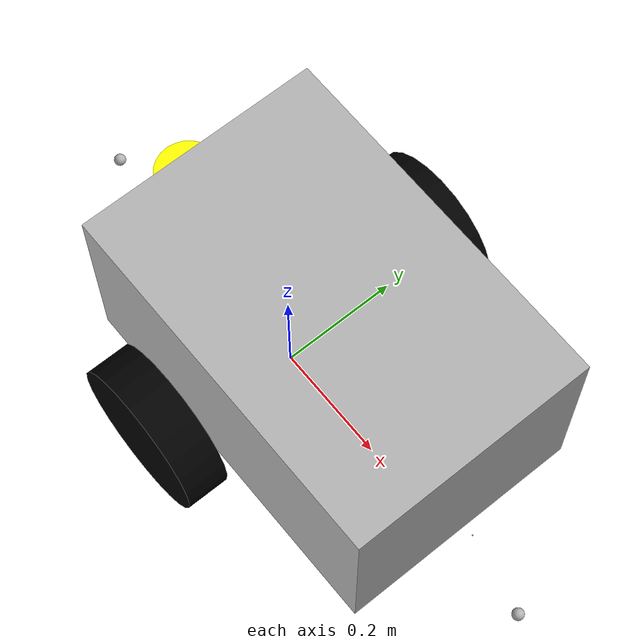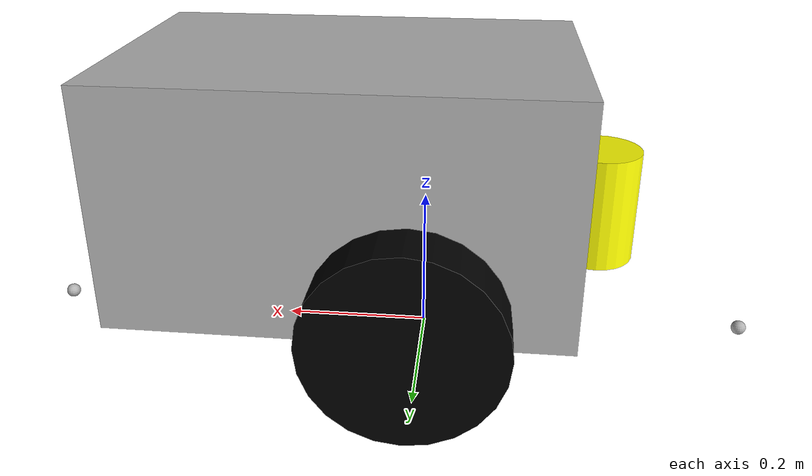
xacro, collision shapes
<?xml version="1.0"?>
<!-- Materials -->
<robot xmlns:xacro="http://www.ros.org/wiki/xacro" name="mp_500">

    <material name="Neobotix/Black">
        <color rgba="0.0 0.0 0.0 1.0"/>
    </material>

    <material name="Neobotix/Blue">
        <color rgba="0.0 0.0 0.8 1.0"/>
    </material>

    <material name="Neobotix/Green">
        <color rgba="0.0 0.8 0.0 1.0"/>
    </material>

    <material name="Neobotix/Grey">
        <color rgba="0.7 0.7 0.7 1.0"/>
    </material>

    <material name="Neobotix/Grey2">
        <color rgba="0.9 0.9 0.9 1.0"/>
    </material>

    <material name="Neobotix/Red">
        <color rgba="0.8 0.0 0.0 1.0"/>
    </material>

    <material name="Neobotix/White">
        <color rgba="1.0 1.0 1.0 1.0"/>
    </material>

    <material name="Neobotix/Yellow">
        <color rgba="1.0 1.0 0 10" />
    </material>

<!--++++++++++++++++++++++++++++++base_link++++++++++++++++++++++++++++++++++++++++++++++++++++-->
<!--++++++++++++++++++++body++++++++++++++++++++++++++++-->
  <link name="base_link">
       <inertial>
		  <mass value="5.67" />
		    <origin xyz="0.10 0 0.244" rpy="0 0 0"/>
		    <inertia ixx="0.25" ixy="0.0" ixz="0.0"
		             iyy="0.25" iyz="0.0"
		             izz="0.25" />
	  </inertial>
      <visual name='body'>
        <!--origin xyz="0.0 0.0 0.234" rpy="0 0 1.57" /--><!-- for cylinder -->
	<origin xyz="0.0 0.0 0.09" rpy="0 0 -1.57" /><!-- for STL -->
              <geometry>
                 <mesh filename="package://neo_mp_500/robot_model/mp_500/meshes/MP500-BODY.STL" scale="0.01 0.01 0.01"/>
	    	<!--cylinder length="0.381" radius="0.2545"/-->
	    	<!--box size="0.445 0.277 0.17"/-->
              </geometry>
        <material name="Neobotix/Grey" />
       </visual>
      <collision name='body_collision'>
        <origin xyz="0.10 0 0.244" rpy="0 0 -1.57" />
        <geometry>
          <box size="0.400 0.600 0.320"/>
          <!--cylinder length="0.381" radius="0.2545"/-->
        </geometry>
      </collision>
</link>

<!--+++++++++++++++++++wheel_left_link++++++++++++++++++++++++-->
	<link name="wheel_left_link" type="wheel">
    	  <inertial>
      		<mass value="0.15" />
     		 <origin xyz="0 0 0" rpy="0 0 0" />
      		<inertia ixx="0.0007" ixy="0" ixz="0" iyy="0.0007" iyz="0" izz="0.0007" />
    	  </inertial>

    <visual>
     	<origin xyz="0 0 0" rpy="0 0 -1.57" />
     	<geometry>
		<mesh filename="package://neo_mp_500/robot_model/mp_500/meshes/MP500-WHEEL.STL" scale="0.01 0.01 0.01" />
     	</geometry>

     	<material name="Neobotix/Black" />
    </visual>
    <collision>
     	<origin xyz="0 0 0" rpy="0 1.57 -1.57" />
     	<geometry>
        	<cylinder radius="0.125" length="0.07"/>
     	</geometry>
    </collision>

</link>

<!--+++++++++++++++++++wheel_left_joint++++++++++++++++++++++++-->
	<joint name="wheel_left_joint" type="revolute">
		<origin xyz="0.005 0.255 0.13" rpy="0 0 0" />
    	<axis xyz="0 1 0"/>
    	<limit effort="1000.0" lower="-1e+16" upper="1e+16" velocity="3.5"/>
    	<joint_properties damping="0.0" friction="0.0" />
    	<parent link="base_link" />
    	<child link="wheel_left_link" />
    </joint>

<!--+++++++++++++++++++wheel_right_link++++++++++++++++++++++++-->
<link name="wheel_right_link" type="wheel">
	<inertial>
		  <mass value="0.15" />
		  <origin xyz="0 0 0" rpy="0 0 -1.57" />
		  <!--inertia ixx="0.0051" ixy="0" ixz="0" iyy="0.0051" iyz="0" izz="0.009" /-->
                  <inertia ixx="0.0007" ixy="0" ixz="0" iyy="0.0007" iyz="0" izz="0.0007" />
	</inertial>

		<visual>
		 	<origin xyz="0 0 0" rpy="0 0 -1.57" />
		 	<geometry>
				<mesh filename="package://neo_mp_500/robot_model/mp_500/meshes/MP500-WHEEL.STL" scale="0.01 0.01 0.01" />
		 	</geometry>
		 	<material name="Neobotix/Black" />
		</visual>

		<collision>
		 	<origin xyz="0 0 0" rpy="0 1.57 -1.57" />
		 	<geometry>
		    	<cylinder radius="0.125" length="0.07"/>
		 	</geometry>
		</collision>
	</link>

<!--+++++++++++++++++++wheel_right_joint++++++++++++++++++++++++-->
	<joint name="wheel_right_joint" type="revolute">
    	<origin xyz="0.005 -0.255 0.13" rpy="0 0 0" />
    	<axis xyz="0 1 0"/>
    	<limit effort="1000.0" lower="-1e+16" upper="1e+16" velocity="3.5"/>
    	<joint_properties damping="0.0" friction="0.0" />
    	<parent link="base_link" />
    	<child link="wheel_right_link" />
    </joint>

<!--+++++++++++++++++++laserscanner_front_joint++++++++++++++++++++++++-->
	<joint name="laserscanner_front_joint" type="fixed">
		  <axis xyz="0 0 1" />
		  <origin xyz="-0.234 0 0.241" rpy="0 0 0" />
		  <parent link="base_link"/>
		  <child link="laserscanner_front_link"/>
	</joint>

<!--+++++++++++++++++++laserscanner_front_link++++++++++++++++++++++++-->
	<link name="laserscanner_front_link" type="laser">
		<inertial>
			<mass value="0.01" />
			<origin xyz="0 0 -0.04" rpy="3.14 0 -1.57" />
			<inertia ixx="0.0001" ixy="0" ixz="0" iyy="0.000001" iyz="0" izz="0.0001" />
	  	</inertial>
	  	<visual>
			<origin xyz="0 0 -0.04" rpy="3.14 0 -1.57" />
			<geometry>
                             <!--cylinder length="0.154" radius="0.053" /-->
                             <mesh filename="package://neo_mp_500/robot_model/mp_500/meshes/SICK-S300.STL" />
			</geometry>
			<material name="Neobotix/Yellow" />
	  	</visual>
	  	<collision>
			<origin xyz="0 0 -0.04" rpy="3.14 0 -1.57" />
			<geometry>
		  	<cylinder length="0.154" radius="0.053" />
			</geometry>
	  	</collision>
	</link>
<!--+++++++++++++++ wheel_hanger+++++++++++++++++++++++++++-->
<link name="hanger">
	<inertial>
		  <mass value="0" />
		  <origin xyz="0 0 0" rpy="0 0 0" />
		  <inertia ixx="0.0013" ixy="0" ixz="0" iyy="0.0013" iyz="0" izz="0.0013" />
	</inertial>
	<visual>
	 	<origin xyz="0 0 0" rpy="0 0 -1.57" />
	 	<geometry>
		      <mesh filename="package://neo_mp_500/robot_model/mp_500/meshes/HANGER-WHEEL.STL" scale="0.01 0.01 0.01" />
		 </geometry>
		 <material name="Neobotix/Grey" />
	</visual>
        <collision>
		 <origin xyz="0 0 0" rpy="0 0 -1.57" />
		 <geometry>
          	 <sphere radius="0.00115"/>
		 </geometry>
	</collision>
</link>

<joint name="hanger_joint" type="fixed">
    	<origin xyz="0.425 0 0.12" rpy="0 0 0"/>
    	<axis xyz="0 0 1"/>
    	<limit effort="1000.0" lower="-1e+16" upper="1e+16" velocity="13.5"/>
    	<joint_properties damping="0.0" friction="0.0" />
    	<parent link="base_link" />
    	<child link="hanger" />
    </joint>

<!--+++++++++++++++ castor_front +++++++++++++++++++++++++++-->
<link name="castor_front">
	<inertial>
		  <mass value="0.05" />
		  <origin xyz="0 0 0" rpy="0 0 0" />
		  <inertia ixx="0.0013" ixy="0" ixz="0" iyy="0.0013" iyz="0" izz="0.0013" />
	</inertial>
	<visual>
	 	<origin xyz="0 0 0" rpy="0 0 0" />
	 	<geometry>
		   <sphere radius="0.0015"/>
		 </geometry>
		 <material name="Neobotix/Grey" />
	</visual>
        <collision>
		 <origin xyz="0 0 0" rpy="0 0 0" />
		 <geometry>
          	 <sphere radius="0.01"/>
		 </geometry>
	</collision>
</link>

<joint name="castor_front_joint" type="fixed">
    	<origin xyz="0.54 0 0.015" rpy="0 0 0"/>
    	<axis xyz="0 0 1"/>
    	<limit effort="1000.0" lower="-1e+16" upper="1e+16" velocity="13.5"/>
    	<joint_properties damping="0.0" friction="0.0" />
    	<parent link="base_link" />
    	<child link="castor_front" />
    </joint>

<!--+++++++++++++++ castor_back +++++++++++++++++++++++++++-->
<link name="castor_back">
	<inertial>
		  <mass value="0.05" />
		  <origin xyz="0 0 0" rpy="0 0 0" />
		  <inertia ixx="0.0013" ixy="0" ixz="0" iyy="0.0013" iyz="0" izz="0.0013" />
	</inertial>
	<visual>
	 	<origin xyz="0 0 0" rpy="0 0 0" />
	 	<geometry>
		   <sphere radius="0.0015"/>
		 </geometry>
		 <material name="Neobotix/Grey" />
	</visual>
        <collision>
		 <origin xyz="0 0 0" rpy="0 0 0" />
		 <geometry>
          	 <sphere radius="0.01"/>
		 </geometry>
	</collision>
</link>

<joint name="castor_back_joint" type="fixed">
    	<origin xyz="-0.45 0 0.015" rpy="0 0 0"/>
    	<axis xyz="0 0 1"/>
    	<limit effort="1000.0" lower="-1e+16" upper="1e+16" velocity="13.5"/>
    	<joint_properties damping="0.0" friction="0.0" />
    	<parent link="base_link" />
    	<child link="castor_back" />
    </joint>

<transmission name="wheel_left">
    <type>transmission_interface/SimpleTransmission</type>
    <joint name="wheel_left_joint">
      <hardwareInterface>VelocityJointInterface</hardwareInterface>
    </joint>
    <actuator name="wheel_left_joint_motor">
      <hardwareInterface>VelocityJointInterface</hardwareInterface>
      <mechanicalReduction>1</mechanicalReduction>
    </actuator>
  </transmission>

  <transmission name="wheel_right">
    <type>transmission_interface/SimpleTransmission</type>
    <joint name="wheel_right_joint">
      <hardwareInterface>VelocityJointInterface</hardwareInterface>
    </joint>
    <actuator name="wheel_right_joint_motor">
      <hardwareInterface>VelocityJointInterface</hardwareInterface>
      <mechanicalReduction>1</mechanicalReduction>
    </actuator>
  </transmission>

</robot>
